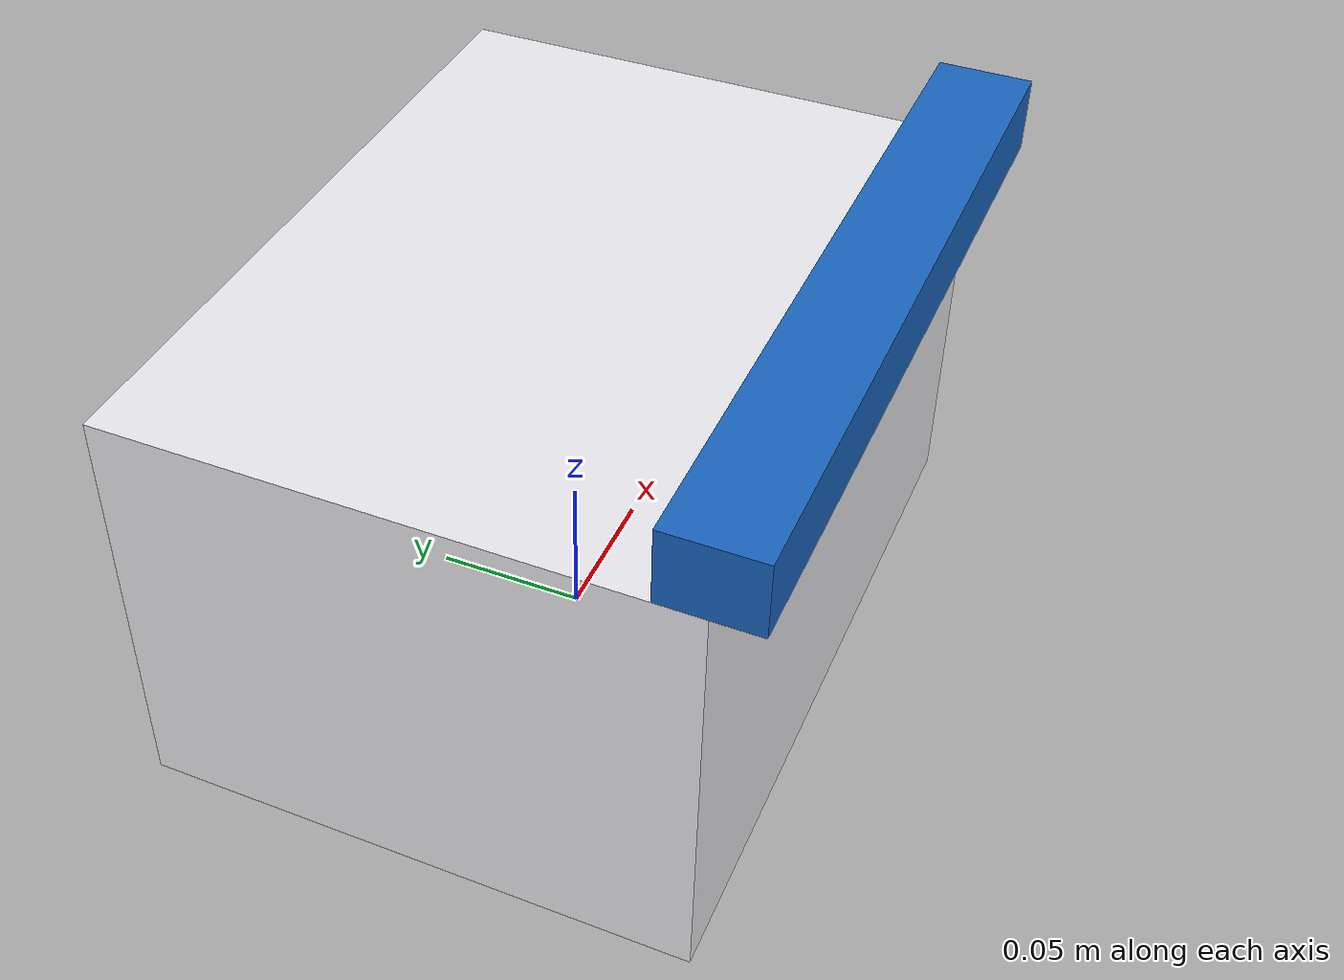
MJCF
<?xml version="1.0" encoding="utf-8"?>
<mujoco model="real_lab_aub_ngs_sequencer">
  <compiler angle="radian" autolimits="true"/>
  <default>
    <default class="body"><geom contype="1" conaffinity="1"/></default>
  </default>
  <worldbody>
    <body name="base">
      <geom type="box" size="0.12 0.09 0.07" pos="0 0 0.07" rgba="0.92 0.92 0.94 1" class="body"/>
      <body name="lid" pos="0 -0.09 0.14">
        <joint name="lid_joint" type="hinge" axis="0 1 0" range="0 1.5" damping="0.6" frictionloss="0.25"/>
  <geom type="box" size="0.12 0.015 0.012" pos="0 0 0.012" rgba="0.1 0.4 0.75 1" class="body"/>
      </body>
    </body>
  </worldbody>
</mujoco>
